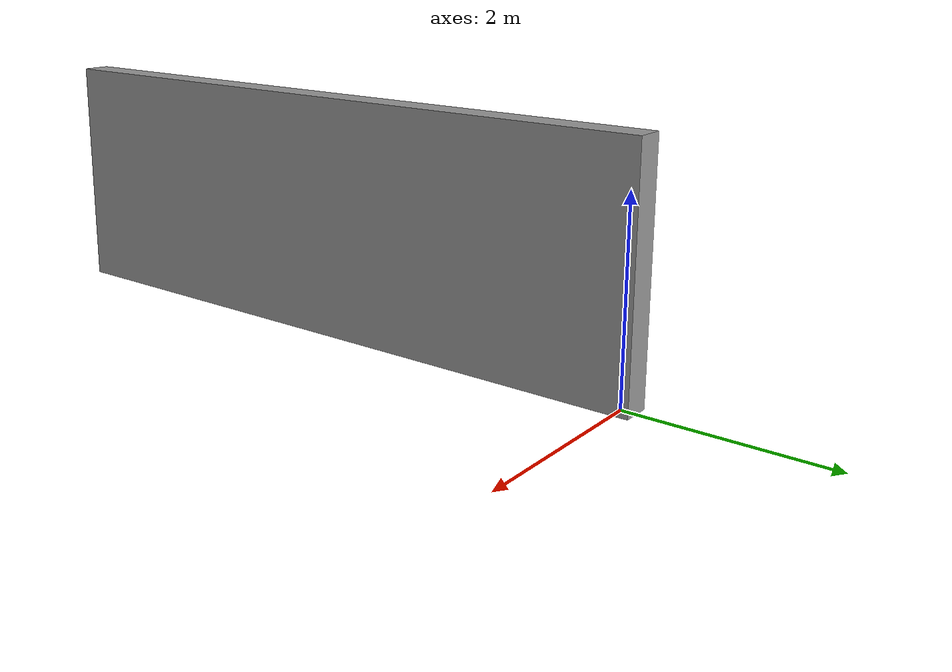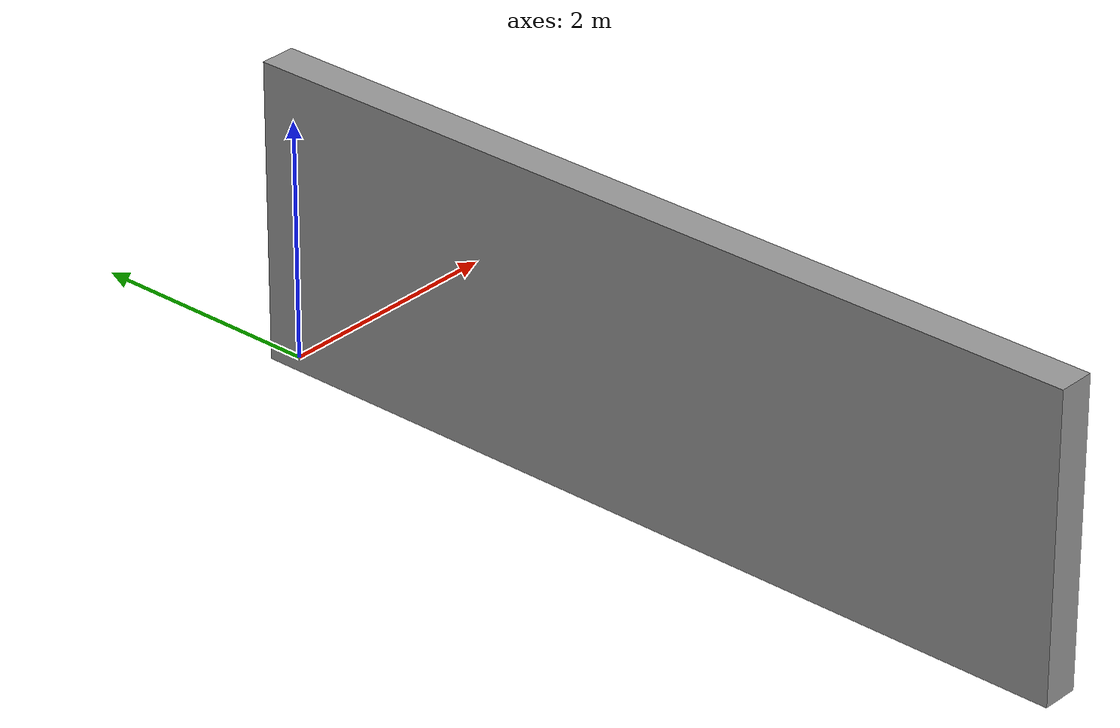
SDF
<?xml version='1.0'?>
<sdf version='1.6'>
  <model name='wall_7_03'>
    <pose frame=''>0 -3.5 0 0 -0 0</pose>
    <link name='Wall_12'>
      <collision name='Wall_12_Collision'>
        <geometry>
          <box>
            <size>7.3 0.3 2.5</size>
          </box>
        </geometry>
        <pose frame=''>0 0 1.25 0 -0 0</pose>
      </collision>
      <visual name='Wall_12_Visual'>
        <pose frame=''>0 0 1.25 0 -0 0</pose>
        <geometry>
          <box>
            <size>7.3 0.3 2.5</size>
          </box>
        </geometry>
        <material>
          <script>
            <uri>file://media/materials/scripts/gazebo.material</uri>
            <name>Gazebo/Grey</name>
          </script>
          <ambient>1 1 1 1</ambient>
        </material>
        <meta>
          <layer>0</layer>
        </meta>
      </visual>
      <pose frame=''>0 0 0 0 -0 -1.5708</pose>
    </link>
    <static>1</static>
  </model>
</sdf>
